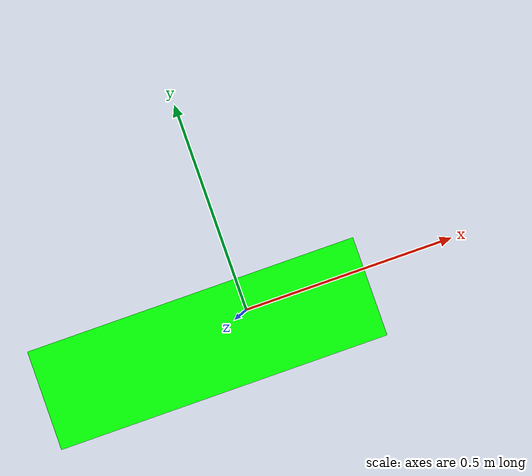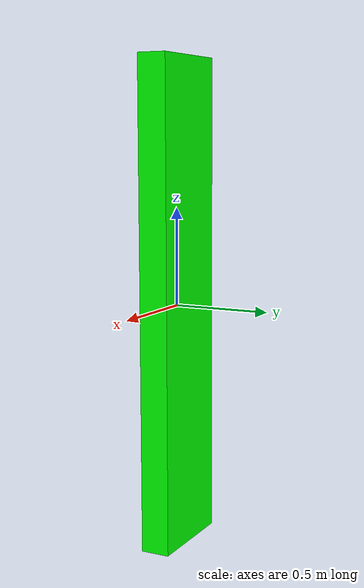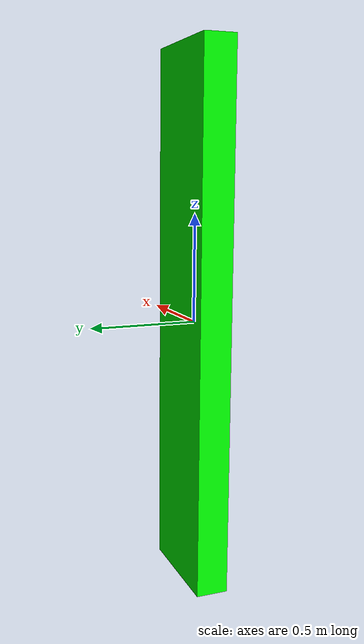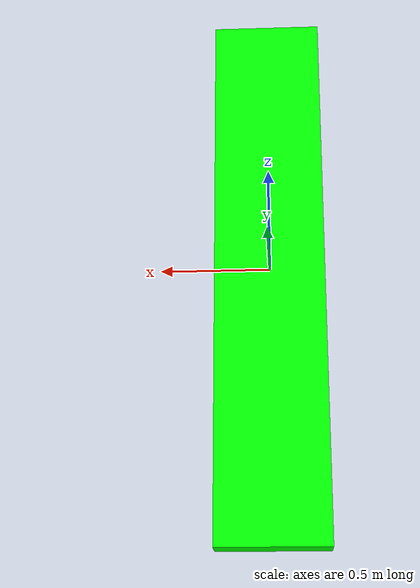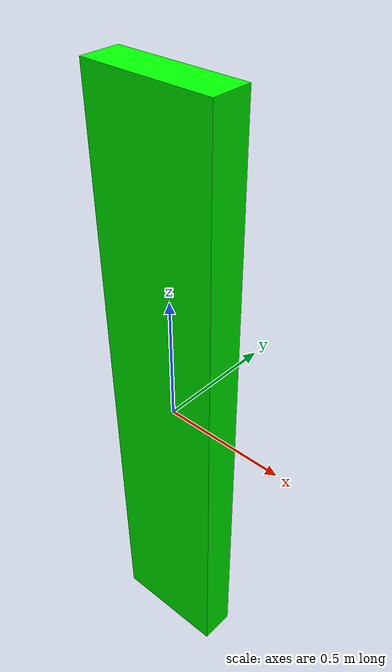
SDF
<?xml version="1.0" ?>
<sdf version="1.6">
  <model name="green_block">
    <static>true</static>
    <link name="link">
      <visual name="visual">
        <geometry>
          <box>
            <size>0.5 0.15 2.5</size>
          </box>
        </geometry>
        <material>
          <ambient>0 1 0 1</ambient>
          <diffuse>0 1 0 1</diffuse>
        </material>
      </visual>
      <collision name="collision">
        <geometry>
          <box>
            <size>0.5 0.5 0.5</size>
          </box>
        </geometry>
      </collision>
    </link>
  </model>
</sdf>
